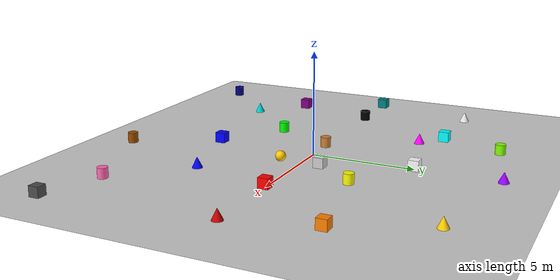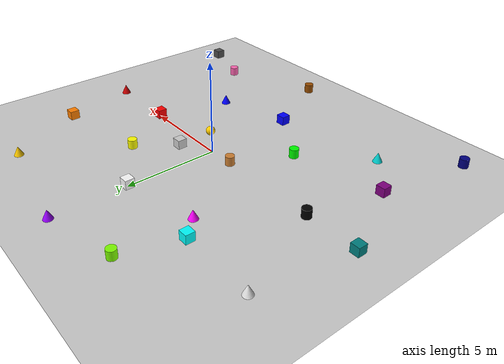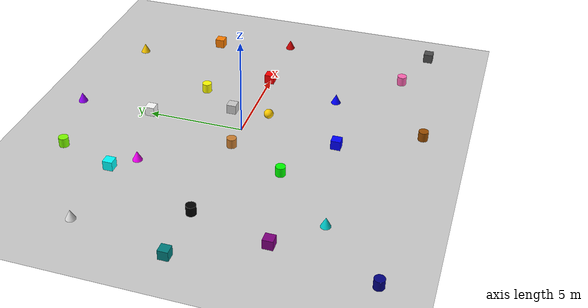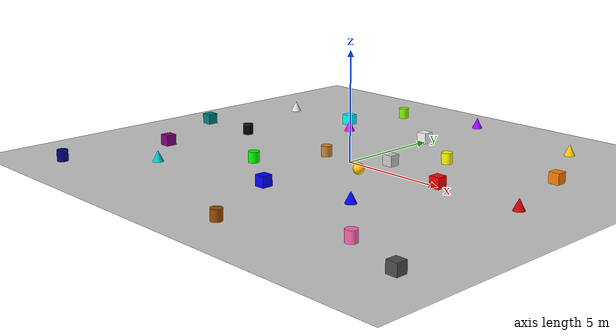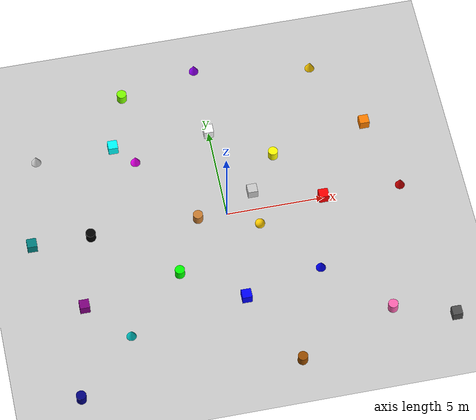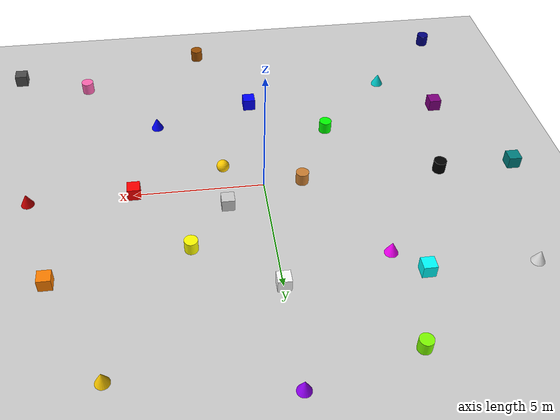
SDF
<?xml version="1.0" encoding="UTF-8"?>
<sdf version="1.9">
  <world name="vio_world">

    <physics type="ode">
      <max_step_size>0.004</max_step_size>
      <real_time_factor>1.0</real_time_factor>
      <real_time_update_rate>250</real_time_update_rate>
    </physics>
    <gravity>0 0 -9.8</gravity>
    <magnetic_field>6e-06 2.3e-05 -4.2e-05</magnetic_field>
    <atmosphere type="adiabatic"/>

    <scene>
      <grid>false</grid>
      <ambient>0.4 0.4 0.4 1</ambient>
      <background>0.7 0.7 0.7 1</background>
      <shadows>true</shadows>
    </scene>

    <include>
      <uri>model://vio_field</uri> <name>soccer_field</name> <pose>0 0 0 0 0 0</pose>
    </include>

    <light name="sunUTC" type="directional">
      <pose>0 0 500 0 -0 0</pose>
      <cast_shadows>true</cast_shadows>
      <intensity>1</intensity>
      <direction>0.001 0.625 -0.78</direction>
      <diffuse>0.904 0.904 0.904 1</diffuse>
      <specular>0.271 0.271 0.271 1</specular>
    </light>

    <spherical_coordinates>
      <surface_model>EARTH_WGS84</surface_model>
      <world_frame_orientation>ENU</world_frame_orientation>
      <latitude_deg>47.397971</latitude_deg>
      <longitude_deg>8.546163</longitude_deg>
      <elevation>0</elevation>
    </spherical_coordinates>

    <model name="center_gold_sphere">
      <pose>1.5 -1.0 0.25 0 0 0</pose>
      <static>true</static>
      <link name="link">
        <visual name="v">
          <geometry><sphere><radius>0.25</radius></sphere></geometry>
          <material><ambient>1 0.8 0 1</ambient><diffuse>1 0.8 0 1</diffuse></material>
        </visual>
        <collision name="c">
          <geometry><sphere><radius>0.25</radius></sphere></geometry>
        </collision>
      </link>
    </model>

    <model name="center_silver_box">
      <pose>1.5 1.0 0.25 0 0 0</pose>
      <static>true</static>
      <link name="link">
        <visual name="v">
          <geometry><box><size>0.5 0.5 0.5</size></box></geometry>
          <material><ambient>0.8 0.8 0.8 1</ambient><diffuse>0.8 0.8 0.8 1</diffuse></material>
        </visual>
        <collision name="c">
          <geometry><box><size>0.5 0.5 0.5</size></box></geometry>
        </collision>
      </link>
    </model>

    <model name="center_bronze_cyl">
      <pose>-1.5 0 0.25 0 0 0</pose>
      <static>true</static>
      <link name="link">
        <visual name="v">
          <geometry><cylinder><radius>0.25</radius><length>0.5</length></cylinder></geometry>
          <material><ambient>0.8 0.5 0.2 1</ambient><diffuse>0.8 0.5 0.2 1</diffuse></material>
        </visual>
        <collision name="c">
          <geometry><cylinder><radius>0.25</radius><length>0.5</length></cylinder></geometry>
        </collision>
      </link>
    </model>

    <model name="box1_white">
      <pose>0 5 0.25 0 0 0</pose>
      <static>true</static>
      <link name="link"><visual name="v"><geometry><box><size>0.5 0.5 0.5</size></box></geometry><material><ambient>1 1 1 1</ambient><diffuse>1 1 1 1</diffuse></material></visual><collision name="c"><geometry><box><size>0.5 0.5 0.5</size></box></geometry></collision></link>
    </model>

    <model name="box2_blue">
      <pose>0 -5 0.25 0 0 0</pose>
      <static>true</static>
      <link name="link"><visual name="v"><geometry><box><size>0.5 0.5 0.5</size></box></geometry><material><ambient>0 0 1 1</ambient><diffuse>0 0 1 1</diffuse></material></visual><collision name="c"><geometry><box><size>0.5 0.5 0.5</size></box></geometry></collision></link>
    </model>

    <model name="box3_red">
      <pose>5 0 0.25 0 0 0</pose>
      <static>true</static>
      <link name="link"><visual name="v"><geometry><box><size>0.5 0.5 0.5</size></box></geometry><material><ambient>1 0 0 1</ambient><diffuse>1 0 0 1</diffuse></material></visual><collision name="c"><geometry><box><size>0.5 0.5 0.5</size></box></geometry></collision></link>
    </model>

    <model name="box4_cyan">
      <pose>-5 5 0.25 0 0 0</pose>
      <static>true</static>
      <link name="link"><visual name="v"><geometry><box><size>0.5 0.5 0.5</size></box></geometry><material><ambient>0 1 1 1</ambient><diffuse>0 1 1 1</diffuse></material></visual><collision name="c"><geometry><box><size>0.5 0.5 0.5</size></box></geometry></collision></link>
    </model>

    <model name="box5_orange">
      <pose>8 4 0.25 0 0 0</pose>
      <static>true</static>
      <link name="link"><visual name="v"><geometry><box><size>0.5 0.5 0.5</size></box></geometry><material><ambient>1 0.5 0 1</ambient><diffuse>1 0.5 0 1</diffuse></material></visual><collision name="c"><geometry><box><size>0.5 0.5 0.5</size></box></geometry></collision></link>
    </model>

    <model name="box6_purple">
      <pose>-8 -4 0.25 0 0 0</pose>
      <static>true</static>
      <link name="link"><visual name="v"><geometry><box><size>0.5 0.5 0.5</size></box></geometry><material><ambient>0.5 0 0.5 1</ambient><diffuse>0.5 0 0.5 1</diffuse></material></visual><collision name="c"><geometry><box><size>0.5 0.5 0.5</size></box></geometry></collision></link>
    </model>

    <model name="box7_grey">
      <pose>10 -8 0.25 0 0 0</pose>
      <static>true</static>
      <link name="link"><visual name="v"><geometry><box><size>0.5 0.5 0.5</size></box></geometry><material><ambient>0.3 0.3 0.3 1</ambient><diffuse>0.3 0.3 0.3 1</diffuse></material></visual><collision name="c"><geometry><box><size>0.5 0.5 0.5</size></box></geometry></collision></link>
    </model>

    <model name="box8_teal">
      <pose>-10 0 0.25 0 0 0</pose>
      <static>true</static>
      <link name="link"><visual name="v"><geometry><box><size>0.5 0.5 0.5</size></box></geometry><material><ambient>0 0.5 0.5 1</ambient><diffuse>0 0.5 0.5 1</diffuse></material></visual><collision name="c"><geometry><box><size>0.5 0.5 0.5</size></box></geometry></collision></link>
    </model>

    <model name="cyl1_green">
      <pose>-3 -3 0.25 0 0 0</pose>
      <static>true</static>
      <link name="link"><visual name="v"><geometry><cylinder><radius>0.25</radius><length>0.5</length></cylinder></geometry><material><ambient>0 1 0 1</ambient><diffuse>0 1 0 1</diffuse></material></visual><collision name="c"><geometry><cylinder><radius>0.25</radius><length>0.5</length></cylinder></geometry></collision></link>
    </model>

    <model name="cyl2_yellow">
      <pose>3 3 0.25 0 0 0</pose>
      <static>true</static>
      <link name="link"><visual name="v"><geometry><cylinder><radius>0.25</radius><length>0.5</length></cylinder></geometry><material><ambient>1 1 0 1</ambient><diffuse>1 1 0 1</diffuse></material></visual><collision name="c"><geometry><cylinder><radius>0.25</radius><length>0.5</length></cylinder></geometry></collision></link>
    </model>

    <model name="cyl3_black">
      <pose>-7 0 0.25 0 0 0</pose>
      <static>true</static>
      <link name="link"><visual name="v"><geometry><cylinder><radius>0.25</radius><length>0.5</length></cylinder></geometry><material><ambient>0 0 0 1</ambient><diffuse>0 0 0 1</diffuse></material></visual><collision name="c"><geometry><cylinder><radius>0.25</radius><length>0.5</length></cylinder></geometry></collision></link>
    </model>

    <model name="cyl4_pink">
      <pose>7 -7 0.25 0 0 0</pose>
      <static>true</static>
      <link name="link"><visual name="v"><geometry><cylinder><radius>0.25</radius><length>0.5</length></cylinder></geometry><material><ambient>1 0.4 0.7 1</ambient><diffuse>1 0.4 0.7 1</diffuse></material></visual><collision name="c"><geometry><cylinder><radius>0.25</radius><length>0.5</length></cylinder></geometry></collision></link>
    </model>

    <model name="cyl5_lime">
      <pose>-4 8 0.25 0 0 0</pose>
      <static>true</static>
      <link name="link"><visual name="v"><geometry><cylinder><radius>0.25</radius><length>0.5</length></cylinder></geometry><material><ambient>0.5 1 0 1</ambient><diffuse>0.5 1 0 1</diffuse></material></visual><collision name="c"><geometry><cylinder><radius>0.25</radius><length>0.5</length></cylinder></geometry></collision></link>
    </model>

    <model name="cyl6_brown">
      <pose>2 -9 0.25 0 0 0</pose>
      <static>true</static>
      <link name="link"><visual name="v"><geometry><cylinder><radius>0.25</radius><length>0.5</length></cylinder></geometry><material><ambient>0.6 0.3 0 1</ambient><diffuse>0.6 0.3 0 1</diffuse></material></visual><collision name="c"><geometry><cylinder><radius>0.25</radius><length>0.5</length></cylinder></geometry></collision></link>
    </model>

    <model name="cyl7_navy">
      <pose>-9 -9 0.25 0 0 0</pose>
      <static>true</static>
      <link name="link"><visual name="v"><geometry><cylinder><radius>0.25</radius><length>0.5</length></cylinder></geometry><material><ambient>0 0 0.5 1</ambient><diffuse>0 0 0.5 1</diffuse></material></visual><collision name="c"><geometry><cylinder><radius>0.25</radius><length>0.5</length></cylinder></geometry></collision></link>
    </model>

    <model name="cone1_blue">
      <pose>4 -4 0.25 0 0 0</pose>
      <static>true</static>
      <link name="link"><visual name="v"><geometry><cone><radius>0.25</radius><length>0.5</length></cone></geometry><material><ambient>0 0 1 1</ambient><diffuse>0 0 1 1</diffuse></material></visual><collision name="c"><geometry><cone><radius>0.25</radius><length>0.5</length></cone></geometry></collision></link>
    </model>

    <model name="cone2_magenta">
      <pose>-4 4 0.25 0 0 0</pose>
      <static>true</static>
      <link name="link"><visual name="v"><geometry><cone><radius>0.25</radius><length>0.5</length></cone></geometry><material><ambient>1 0 1 1</ambient><diffuse>1 0 1 1</diffuse></material></visual><collision name="c"><geometry><cone><radius>0.25</radius><length>0.5</length></cone></geometry></collision></link>
    </model>

    <model name="cone3_red">
      <pose>9 0 0.25 0 0 0</pose>
      <static>true</static>
      <link name="link"><visual name="v"><geometry><cone><radius>0.25</radius><length>0.5</length></cone></geometry><material><ambient>0.8 0 0 1</ambient><diffuse>0.8 0 0 1</diffuse></material></visual><collision name="c"><geometry><cone><radius>0.25</radius><length>0.5</length></cone></geometry></collision></link>
    </model>

    <model name="cone4_cyan">
      <pose>-6 -6 0.25 0 0 0</pose>
      <static>true</static>
      <link name="link"><visual name="v"><geometry><cone><radius>0.25</radius><length>0.5</length></cone></geometry><material><ambient>0 0.8 0.8 1</ambient><diffuse>0 0.8 0.8 1</diffuse></material></visual><collision name="c"><geometry><cone><radius>0.25</radius><length>0.5</length></cone></geometry></collision></link>
    </model>

    <model name="cone5_gold">
      <pose>6 8 0.25 0 0 0</pose>
      <static>true</static>
      <link name="link"><visual name="v"><geometry><cone><radius>0.25</radius><length>0.5</length></cone></geometry><material><ambient>1 0.8 0 1</ambient><diffuse>1 0.8 0 1</diffuse></material></visual><collision name="c"><geometry><cone><radius>0.25</radius><length>0.5</length></cone></geometry></collision></link>
    </model>

    <model name="cone6_white">
      <pose>-9 5 0.25 0 0 0</pose>
      <static>true</static>
      <link name="link"><visual name="v"><geometry><cone><radius>0.25</radius><length>0.5</length></cone></geometry><material><ambient>0.9 0.9 0.9 1</ambient><diffuse>0.9 0.9 0.9 1</diffuse></material></visual><collision name="c"><geometry><cone><radius>0.25</radius><length>0.5</length></cone></geometry></collision></link>
    </model>

    <model name="cone7_violet">
      <pose>0 9 0.25 0 0 0</pose>
      <static>true</static>
      <link name="link"><visual name="v"><geometry><cone><radius>0.25</radius><length>0.5</length></cone></geometry><material><ambient>0.6 0 1 1</ambient><diffuse>0.6 0 1 1</diffuse></material></visual><collision name="c"><geometry><cone><radius>0.25</radius><length>0.5</length></cone></geometry></collision></link>
    </model>

  </world>
</sdf>

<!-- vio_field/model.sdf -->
<sdf version="1.6">
  <model name="vio_field">
    <static>true</static>
    <link name="link">
      <collision name="collision">
        <geometry>
          <plane>
            <normal>0 0 1</normal>
            <size>30 30</size> </plane>
        </geometry>
      </collision>
      <visual name="visual">
        <geometry>
          <plane>
            <normal>0 0 1</normal>
            <size>30 30</size>
          </plane>
        </geometry>
        <material>
          <ambient>0.8 0.8 0.8 1</ambient>
          <diffuse>0.8 0.8 0.8 1</diffuse>
          <specular>0.1 0.1 0.1 1</specular>
          <pbr>
            <metal>
              <albedo_map>materials/textures/grass_texture.jpg</albedo_map>
              <roughness>0.9</roughness> <metalness>0.0</metalness>   </metal>
          </pbr>
        </material>
      </visual>
    </link>
  </model>
</sdf>
